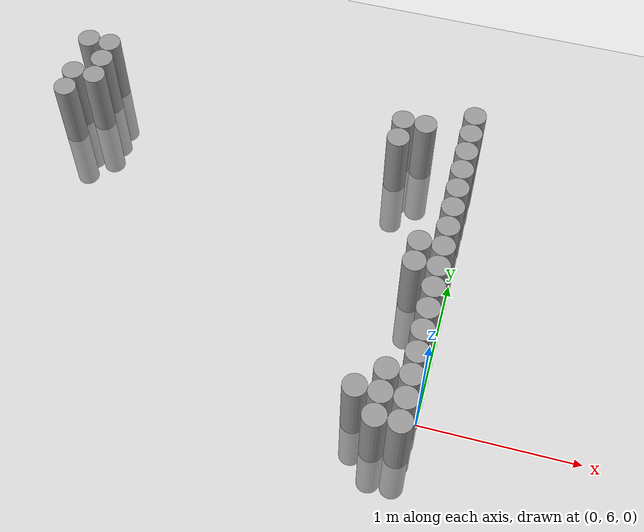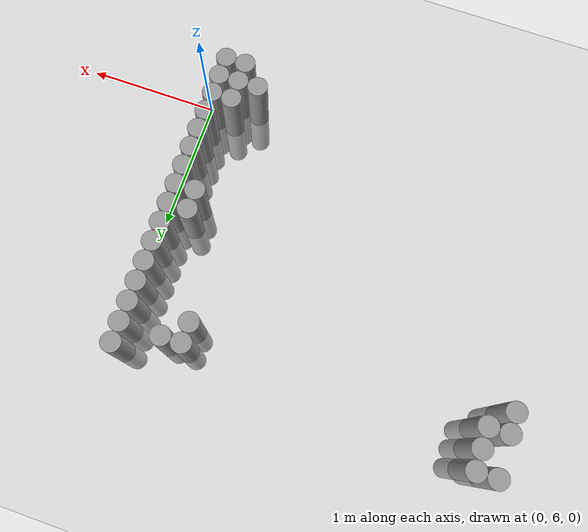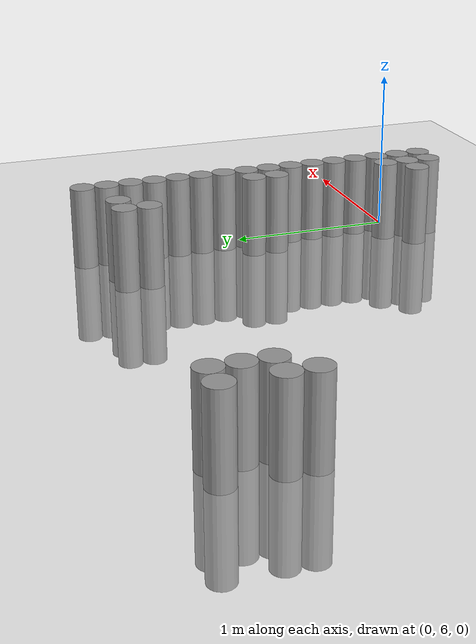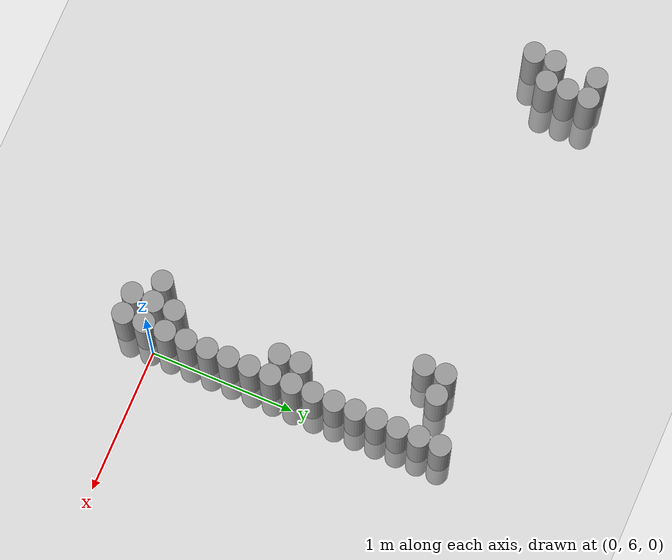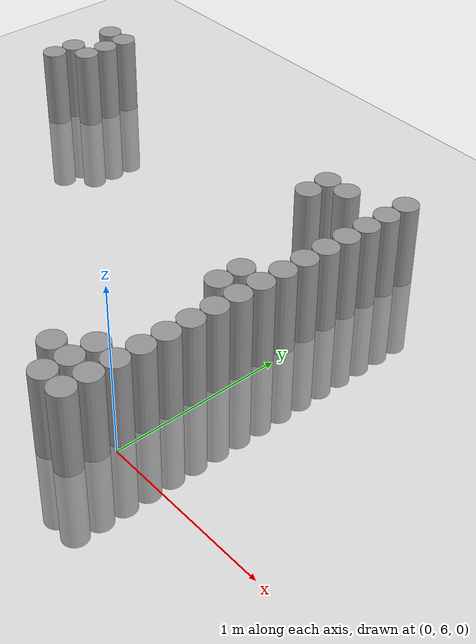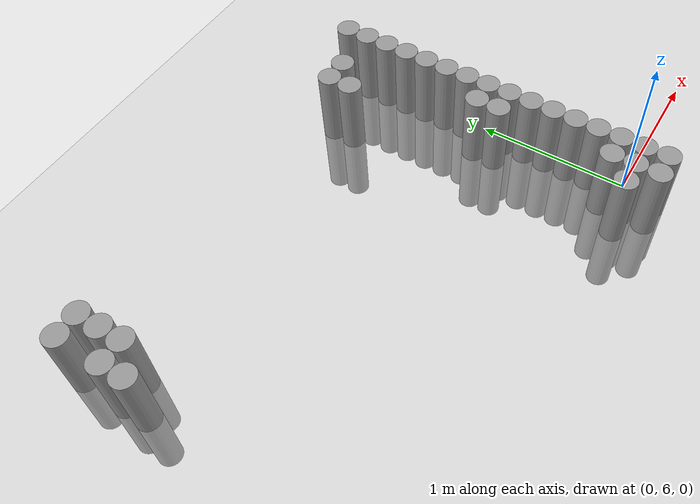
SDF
<sdf version="1.6">
 <world name="default">
  <model name="ground_plane">
   <static>1</static>
   <static>1</static>
   <link name="link">
    <collision name="collision">
     <geometry><plane><normal>0 0 1</normal><size>100 100</size></plane></geometry>
     <surface><friction><ode><mu>100</mu><mu2>50</mu2></ode></friction></surface>
    </collision>
    <visual name="visual">
     <cast_shadows>0</cast_shadows>
     <geometry><plane><normal>0 0 1</normal><size>100 100</size></plane></geometry>
     <material>
      <script><uri>file://media/materials/scripts/gazebo.material</uri><name>Gazebo/Grey</name></script>
     </material>
    </visual>
   </link>
  </model>
  <model name="unit_cylinder_181">
   <static>1</static>
   <pose>-2.775000 7.575000 0.000000 0.000000 0.000000 0.000000</pose>
   <link name="link">
    <inertial>
     <mass>1</mass>
     <inertia><ixx>0.145833</ixx><ixy>0</ixy><ixz>0</ixz><iyy>0.145833</iyy><iyz>0</iyz><izz>0.125</izz></inertia>
    </inertial>
    <collision name="collision">
     <geometry><cylinder><radius>0.075000</radius><length>1</length></cylinder></geometry>
    </collision>
    <visual name="visual">
     <geometry><cylinder><radius>0.075000</radius><length>1</length></cylinder></geometry>
     <material>
      <script><name>Gazebo/Grey</name><uri>file://media/materials/scripts/gazebo.material</uri></script>
     </material>
    </visual>
   </link>
  </model>
  <model name="unit_cylinder_182">
   <static>1</static>
   <pose>-2.775000 7.725000 0.000000 0.000000 0.000000 0.000000</pose>
   <link name="link">
    <inertial>
     <mass>1</mass>
     <inertia><ixx>0.145833</ixx><ixy>0</ixy><ixz>0</ixz><iyy>0.145833</iyy><iyz>0</iyz><izz>0.125</izz></inertia>
    </inertial>
    <collision name="collision">
     <geometry><cylinder><radius>0.075000</radius><length>1</length></cylinder></geometry>
    </collision>
    <visual name="visual">
     <geometry><cylinder><radius>0.075000</radius><length>1</length></cylinder></geometry>
     <material>
      <script><name>Gazebo/Grey</name><uri>file://media/materials/scripts/gazebo.material</uri></script>
     </material>
    </visual>
   </link>
  </model>
  <model name="unit_cylinder_183">
   <static>1</static>
   <pose>-2.775000 8.025000 0.000000 0.000000 0.000000 0.000000</pose>
   <link name="link">
    <inertial>
     <mass>1</mass>
     <inertia><ixx>0.145833</ixx><ixy>0</ixy><ixz>0</ixz><iyy>0.145833</iyy><iyz>0</iyz><izz>0.125</izz></inertia>
    </inertial>
    <collision name="collision">
     <geometry><cylinder><radius>0.075000</radius><length>1</length></cylinder></geometry>
    </collision>
    <visual name="visual">
     <geometry><cylinder><radius>0.075000</radius><length>1</length></cylinder></geometry>
     <material>
      <script><name>Gazebo/Grey</name><uri>file://media/materials/scripts/gazebo.material</uri></script>
     </material>
    </visual>
   </link>
  </model>
  <model name="unit_cylinder_185">
   <static>1</static>
   <pose>-2.625000 7.725000 0.000000 0.000000 0.000000 0.000000</pose>
   <link name="link">
    <inertial>
     <mass>1</mass>
     <inertia><ixx>0.145833</ixx><ixy>0</ixy><ixz>0</ixz><iyy>0.145833</iyy><iyz>0</iyz><izz>0.125</izz></inertia>
    </inertial>
    <collision name="collision">
     <geometry><cylinder><radius>0.075000</radius><length>1</length></cylinder></geometry>
    </collision>
    <visual name="visual">
     <geometry><cylinder><radius>0.075000</radius><length>1</length></cylinder></geometry>
     <material>
      <script><name>Gazebo/Grey</name><uri>file://media/materials/scripts/gazebo.material</uri></script>
     </material>
    </visual>
   </link>
  </model>
  <model name="unit_cylinder_186">
   <static>1</static>
   <pose>-2.625000 7.875000 0.000000 0.000000 0.000000 0.000000</pose>
   <link name="link">
    <inertial>
     <mass>1</mass>
     <inertia><ixx>0.145833</ixx><ixy>0</ixy><ixz>0</ixz><iyy>0.145833</iyy><iyz>0</iyz><izz>0.125</izz></inertia>
    </inertial>
    <collision name="collision">
     <geometry><cylinder><radius>0.075000</radius><length>1</length></cylinder></geometry>
    </collision>
    <visual name="visual">
     <geometry><cylinder><radius>0.075000</radius><length>1</length></cylinder></geometry>
     <material>
      <script><name>Gazebo/Grey</name><uri>file://media/materials/scripts/gazebo.material</uri></script>
     </material>
    </visual>
   </link>
  </model>
  <model name="unit_cylinder_187">
   <static>1</static>
   <pose>-2.625000 8.025000 0.000000 0.000000 0.000000 0.000000</pose>
   <link name="link">
    <inertial>
     <mass>1</mass>
     <inertia><ixx>0.145833</ixx><ixy>0</ixy><ixz>0</ixz><iyy>0.145833</iyy><iyz>0</iyz><izz>0.125</izz></inertia>
    </inertial>
    <collision name="collision">
     <geometry><cylinder><radius>0.075000</radius><length>1</length></cylinder></geometry>
    </collision>
    <visual name="visual">
     <geometry><cylinder><radius>0.075000</radius><length>1</length></cylinder></geometry>
     <material>
      <script><name>Gazebo/Grey</name><uri>file://media/materials/scripts/gazebo.material</uri></script>
     </material>
    </visual>
   </link>
  </model>
  <model name="unit_cylinder_197">
   <static>1</static>
   <pose>-0.525000 7.725000 0.000000 0.000000 0.000000 0.000000</pose>
   <link name="link">
    <inertial>
     <mass>1</mass>
     <inertia><ixx>0.145833</ixx><ixy>0</ixy><ixz>0</ixz><iyy>0.145833</iyy><iyz>0</iyz><izz>0.125</izz></inertia>
    </inertial>
    <collision name="collision">
     <geometry><cylinder><radius>0.075000</radius><length>1</length></cylinder></geometry>
    </collision>
    <visual name="visual">
     <geometry><cylinder><radius>0.075000</radius><length>1</length></cylinder></geometry>
     <material>
      <script><name>Gazebo/Grey</name><uri>file://media/materials/scripts/gazebo.material</uri></script>
     </material>
    </visual>
   </link>
  </model>
  <model name="unit_cylinder_198">
   <static>1</static>
   <pose>-0.525000 7.875000 0.000000 0.000000 0.000000 0.000000</pose>
   <link name="link">
    <inertial>
     <mass>1</mass>
     <inertia><ixx>0.145833</ixx><ixy>0</ixy><ixz>0</ixz><iyy>0.145833</iyy><iyz>0</iyz><izz>0.125</izz></inertia>
    </inertial>
    <collision name="collision">
     <geometry><cylinder><radius>0.075000</radius><length>1</length></cylinder></geometry>
    </collision>
    <visual name="visual">
     <geometry><cylinder><radius>0.075000</radius><length>1</length></cylinder></geometry>
     <material>
      <script><name>Gazebo/Grey</name><uri>file://media/materials/scripts/gazebo.material</uri></script>
     </material>
    </visual>
   </link>
  </model>
  <model name="unit_cylinder_201">
   <static>1</static>
   <pose>-0.375000 5.925000 0.000000 0.000000 0.000000 0.000000</pose>
   <link name="link">
    <inertial>
     <mass>1</mass>
     <inertia><ixx>0.145833</ixx><ixy>0</ixy><ixz>0</ixz><iyy>0.145833</iyy><iyz>0</iyz><izz>0.125</izz></inertia>
    </inertial>
    <collision name="collision">
     <geometry><cylinder><radius>0.075000</radius><length>1</length></cylinder></geometry>
    </collision>
    <visual name="visual">
     <geometry><cylinder><radius>0.075000</radius><length>1</length></cylinder></geometry>
     <material>
      <script><name>Gazebo/Grey</name><uri>file://media/materials/scripts/gazebo.material</uri></script>
     </material>
    </visual>
   </link>
  </model>
  <model name="unit_cylinder_202">
   <static>1</static>
   <pose>-0.375000 7.875000 0.000000 0.000000 0.000000 0.000000</pose>
   <link name="link">
    <inertial>
     <mass>1</mass>
     <inertia><ixx>0.145833</ixx><ixy>0</ixy><ixz>0</ixz><iyy>0.145833</iyy><iyz>0</iyz><izz>0.125</izz></inertia>
    </inertial>
    <collision name="collision">
     <geometry><cylinder><radius>0.075000</radius><length>1</length></cylinder></geometry>
    </collision>
    <visual name="visual">
     <geometry><cylinder><radius>0.075000</radius><length>1</length></cylinder></geometry>
     <material>
      <script><name>Gazebo/Grey</name><uri>file://media/materials/scripts/gazebo.material</uri></script>
     </material>
    </visual>
   </link>
  </model>
  <model name="unit_cylinder_207">
   <static>1</static>
   <pose>-0.225000 5.775000 0.000000 0.000000 0.000000 0.000000</pose>
   <link name="link">
    <inertial>
     <mass>1</mass>
     <inertia><ixx>0.145833</ixx><ixy>0</ixy><ixz>0</ixz><iyy>0.145833</iyy><iyz>0</iyz><izz>0.125</izz></inertia>
    </inertial>
    <collision name="collision">
     <geometry><cylinder><radius>0.075000</radius><length>1</length></cylinder></geometry>
    </collision>
    <visual name="visual">
     <geometry><cylinder><radius>0.075000</radius><length>1</length></cylinder></geometry>
     <material>
      <script><name>Gazebo/Grey</name><uri>file://media/materials/scripts/gazebo.material</uri></script>
     </material>
    </visual>
   </link>
  </model>
  <model name="unit_cylinder_208">
   <static>1</static>
   <pose>-0.225000 5.925000 0.000000 0.000000 0.000000 0.000000</pose>
   <link name="link">
    <inertial>
     <mass>1</mass>
     <inertia><ixx>0.145833</ixx><ixy>0</ixy><ixz>0</ixz><iyy>0.145833</iyy><iyz>0</iyz><izz>0.125</izz></inertia>
    </inertial>
    <collision name="collision">
     <geometry><cylinder><radius>0.075000</radius><length>1</length></cylinder></geometry>
    </collision>
    <visual name="visual">
     <geometry><cylinder><radius>0.075000</radius><length>1</length></cylinder></geometry>
     <material>
      <script><name>Gazebo/Grey</name><uri>file://media/materials/scripts/gazebo.material</uri></script>
     </material>
    </visual>
   </link>
  </model>
  <model name="unit_cylinder_209">
   <static>1</static>
   <pose>-0.225000 6.075000 0.000000 0.000000 0.000000 0.000000</pose>
   <link name="link">
    <inertial>
     <mass>1</mass>
     <inertia><ixx>0.145833</ixx><ixy>0</ixy><ixz>0</ixz><iyy>0.145833</iyy><iyz>0</iyz><izz>0.125</izz></inertia>
    </inertial>
    <collision name="collision">
     <geometry><cylinder><radius>0.075000</radius><length>1</length></cylinder></geometry>
    </collision>
    <visual name="visual">
     <geometry><cylinder><radius>0.075000</radius><length>1</length></cylinder></geometry>
     <material>
      <script><name>Gazebo/Grey</name><uri>file://media/materials/scripts/gazebo.material</uri></script>
     </material>
    </visual>
   </link>
  </model>
  <model name="unit_cylinder_210">
   <static>1</static>
   <pose>-0.225000 6.825000 0.000000 0.000000 0.000000 0.000000</pose>
   <link name="link">
    <inertial>
     <mass>1</mass>
     <inertia><ixx>0.145833</ixx><ixy>0</ixy><ixz>0</ixz><iyy>0.145833</iyy><iyz>0</iyz><izz>0.125</izz></inertia>
    </inertial>
    <collision name="collision">
     <geometry><cylinder><radius>0.075000</radius><length>1</length></cylinder></geometry>
    </collision>
    <visual name="visual">
     <geometry><cylinder><radius>0.075000</radius><length>1</length></cylinder></geometry>
     <material>
      <script><name>Gazebo/Grey</name><uri>file://media/materials/scripts/gazebo.material</uri></script>
     </material>
    </visual>
   </link>
  </model>
  <model name="unit_cylinder_211">
   <static>1</static>
   <pose>-0.225000 6.975000 0.000000 0.000000 0.000000 0.000000</pose>
   <link name="link">
    <inertial>
     <mass>1</mass>
     <inertia><ixx>0.145833</ixx><ixy>0</ixy><ixz>0</ixz><iyy>0.145833</iyy><iyz>0</iyz><izz>0.125</izz></inertia>
    </inertial>
    <collision name="collision">
     <geometry><cylinder><radius>0.075000</radius><length>1</length></cylinder></geometry>
    </collision>
    <visual name="visual">
     <geometry><cylinder><radius>0.075000</radius><length>1</length></cylinder></geometry>
     <material>
      <script><name>Gazebo/Grey</name><uri>file://media/materials/scripts/gazebo.material</uri></script>
     </material>
    </visual>
   </link>
  </model>
  <model name="unit_cylinder_220">
   <static>1</static>
   <pose>-0.075000 5.775000 0.000000 0.000000 0.000000 0.000000</pose>
   <link name="link">
    <inertial>
     <mass>1</mass>
     <inertia><ixx>0.145833</ixx><ixy>0</ixy><ixz>0</ixz><iyy>0.145833</iyy><iyz>0</iyz><izz>0.125</izz></inertia>
    </inertial>
    <collision name="collision">
     <geometry><cylinder><radius>0.075000</radius><length>1</length></cylinder></geometry>
    </collision>
    <visual name="visual">
     <geometry><cylinder><radius>0.075000</radius><length>1</length></cylinder></geometry>
     <material>
      <script><name>Gazebo/Grey</name><uri>file://media/materials/scripts/gazebo.material</uri></script>
     </material>
    </visual>
   </link>
  </model>
  <model name="unit_cylinder_221">
   <static>1</static>
   <pose>-0.075000 5.925000 0.000000 0.000000 0.000000 0.000000</pose>
   <link name="link">
    <inertial>
     <mass>1</mass>
     <inertia><ixx>0.145833</ixx><ixy>0</ixy><ixz>0</ixz><iyy>0.145833</iyy><iyz>0</iyz><izz>0.125</izz></inertia>
    </inertial>
    <collision name="collision">
     <geometry><cylinder><radius>0.075000</radius><length>1</length></cylinder></geometry>
    </collision>
    <visual name="visual">
     <geometry><cylinder><radius>0.075000</radius><length>1</length></cylinder></geometry>
     <material>
      <script><name>Gazebo/Grey</name><uri>file://media/materials/scripts/gazebo.material</uri></script>
     </material>
    </visual>
   </link>
  </model>
  <model name="unit_cylinder_222">
   <static>1</static>
   <pose>-0.075000 6.075000 0.000000 0.000000 0.000000 0.000000</pose>
   <link name="link">
    <inertial>
     <mass>1</mass>
     <inertia><ixx>0.145833</ixx><ixy>0</ixy><ixz>0</ixz><iyy>0.145833</iyy><iyz>0</iyz><izz>0.125</izz></inertia>
    </inertial>
    <collision name="collision">
     <geometry><cylinder><radius>0.075000</radius><length>1</length></cylinder></geometry>
    </collision>
    <visual name="visual">
     <geometry><cylinder><radius>0.075000</radius><length>1</length></cylinder></geometry>
     <material>
      <script><name>Gazebo/Grey</name><uri>file://media/materials/scripts/gazebo.material</uri></script>
     </material>
    </visual>
   </link>
  </model>
  <model name="unit_cylinder_223">
   <static>1</static>
   <pose>-0.075000 6.225000 0.000000 0.000000 0.000000 0.000000</pose>
   <link name="link">
    <inertial>
     <mass>1</mass>
     <inertia><ixx>0.145833</ixx><ixy>0</ixy><ixz>0</ixz><iyy>0.145833</iyy><iyz>0</iyz><izz>0.125</izz></inertia>
    </inertial>
    <collision name="collision">
     <geometry><cylinder><radius>0.075000</radius><length>1</length></cylinder></geometry>
    </collision>
    <visual name="visual">
     <geometry><cylinder><radius>0.075000</radius><length>1</length></cylinder></geometry>
     <material>
      <script><name>Gazebo/Grey</name><uri>file://media/materials/scripts/gazebo.material</uri></script>
     </material>
    </visual>
   </link>
  </model>
  <model name="unit_cylinder_224">
   <static>1</static>
   <pose>-0.075000 6.375000 0.000000 0.000000 0.000000 0.000000</pose>
   <link name="link">
    <inertial>
     <mass>1</mass>
     <inertia><ixx>0.145833</ixx><ixy>0</ixy><ixz>0</ixz><iyy>0.145833</iyy><iyz>0</iyz><izz>0.125</izz></inertia>
    </inertial>
    <collision name="collision">
     <geometry><cylinder><radius>0.075000</radius><length>1</length></cylinder></geometry>
    </collision>
    <visual name="visual">
     <geometry><cylinder><radius>0.075000</radius><length>1</length></cylinder></geometry>
     <material>
      <script><name>Gazebo/Grey</name><uri>file://media/materials/scripts/gazebo.material</uri></script>
     </material>
    </visual>
   </link>
  </model>
  <model name="unit_cylinder_225">
   <static>1</static>
   <pose>-0.075000 6.525000 0.000000 0.000000 0.000000 0.000000</pose>
   <link name="link">
    <inertial>
     <mass>1</mass>
     <inertia><ixx>0.145833</ixx><ixy>0</ixy><ixz>0</ixz><iyy>0.145833</iyy><iyz>0</iyz><izz>0.125</izz></inertia>
    </inertial>
    <collision name="collision">
     <geometry><cylinder><radius>0.075000</radius><length>1</length></cylinder></geometry>
    </collision>
    <visual name="visual">
     <geometry><cylinder><radius>0.075000</radius><length>1</length></cylinder></geometry>
     <material>
      <script><name>Gazebo/Grey</name><uri>file://media/materials/scripts/gazebo.material</uri></script>
     </material>
    </visual>
   </link>
  </model>
  <model name="unit_cylinder_226">
   <static>1</static>
   <pose>-0.075000 6.675000 0.000000 0.000000 0.000000 0.000000</pose>
   <link name="link">
    <inertial>
     <mass>1</mass>
     <inertia><ixx>0.145833</ixx><ixy>0</ixy><ixz>0</ixz><iyy>0.145833</iyy><iyz>0</iyz><izz>0.125</izz></inertia>
    </inertial>
    <collision name="collision">
     <geometry><cylinder><radius>0.075000</radius><length>1</length></cylinder></geometry>
    </collision>
    <visual name="visual">
     <geometry><cylinder><radius>0.075000</radius><length>1</length></cylinder></geometry>
     <material>
      <script><name>Gazebo/Grey</name><uri>file://media/materials/scripts/gazebo.material</uri></script>
     </material>
    </visual>
   </link>
  </model>
  <model name="unit_cylinder_227">
   <static>1</static>
   <pose>-0.075000 6.825000 0.000000 0.000000 0.000000 0.000000</pose>
   <link name="link">
    <inertial>
     <mass>1</mass>
     <inertia><ixx>0.145833</ixx><ixy>0</ixy><ixz>0</ixz><iyy>0.145833</iyy><iyz>0</iyz><izz>0.125</izz></inertia>
    </inertial>
    <collision name="collision">
     <geometry><cylinder><radius>0.075000</radius><length>1</length></cylinder></geometry>
    </collision>
    <visual name="visual">
     <geometry><cylinder><radius>0.075000</radius><length>1</length></cylinder></geometry>
     <material>
      <script><name>Gazebo/Grey</name><uri>file://media/materials/scripts/gazebo.material</uri></script>
     </material>
    </visual>
   </link>
  </model>
  <model name="unit_cylinder_228">
   <static>1</static>
   <pose>-0.075000 6.975000 0.000000 0.000000 0.000000 0.000000</pose>
   <link name="link">
    <inertial>
     <mass>1</mass>
     <inertia><ixx>0.145833</ixx><ixy>0</ixy><ixz>0</ixz><iyy>0.145833</iyy><iyz>0</iyz><izz>0.125</izz></inertia>
    </inertial>
    <collision name="collision">
     <geometry><cylinder><radius>0.075000</radius><length>1</length></cylinder></geometry>
    </collision>
    <visual name="visual">
     <geometry><cylinder><radius>0.075000</radius><length>1</length></cylinder></geometry>
     <material>
      <script><name>Gazebo/Grey</name><uri>file://media/materials/scripts/gazebo.material</uri></script>
     </material>
    </visual>
   </link>
  </model>
  <model name="unit_cylinder_229">
   <static>1</static>
   <pose>-0.075000 7.125000 0.000000 0.000000 0.000000 0.000000</pose>
   <link name="link">
    <inertial>
     <mass>1</mass>
     <inertia><ixx>0.145833</ixx><ixy>0</ixy><ixz>0</ixz><iyy>0.145833</iyy><iyz>0</iyz><izz>0.125</izz></inertia>
    </inertial>
    <collision name="collision">
     <geometry><cylinder><radius>0.075000</radius><length>1</length></cylinder></geometry>
    </collision>
    <visual name="visual">
     <geometry><cylinder><radius>0.075000</radius><length>1</length></cylinder></geometry>
     <material>
      <script><name>Gazebo/Grey</name><uri>file://media/materials/scripts/gazebo.material</uri></script>
     </material>
    </visual>
   </link>
  </model>
  <model name="unit_cylinder_230">
   <static>1</static>
   <pose>-0.075000 7.275000 0.000000 0.000000 0.000000 0.000000</pose>
   <link name="link">
    <inertial>
     <mass>1</mass>
     <inertia><ixx>0.145833</ixx><ixy>0</ixy><ixz>0</ixz><iyy>0.145833</iyy><iyz>0</iyz><izz>0.125</izz></inertia>
    </inertial>
    <collision name="collision">
     <geometry><cylinder><radius>0.075000</radius><length>1</length></cylinder></geometry>
    </collision>
    <visual name="visual">
     <geometry><cylinder><radius>0.075000</radius><length>1</length></cylinder></geometry>
     <material>
      <script><name>Gazebo/Grey</name><uri>file://media/materials/scripts/gazebo.material</uri></script>
     </material>
    </visual>
   </link>
  </model>
  <model name="unit_cylinder_231">
   <static>1</static>
   <pose>-0.075000 7.425000 0.000000 0.000000 0.000000 0.000000</pose>
   <link name="link">
    <inertial>
     <mass>1</mass>
     <inertia><ixx>0.145833</ixx><ixy>0</ixy><ixz>0</ixz><iyy>0.145833</iyy><iyz>0</iyz><izz>0.125</izz></inertia>
    </inertial>
    <collision name="collision">
     <geometry><cylinder><radius>0.075000</radius><length>1</length></cylinder></geometry>
    </collision>
    <visual name="visual">
     <geometry><cylinder><radius>0.075000</radius><length>1</length></cylinder></geometry>
     <material>
      <script><name>Gazebo/Grey</name><uri>file://media/materials/scripts/gazebo.material</uri></script>
     </material>
    </visual>
   </link>
  </model>
  <model name="unit_cylinder_232">
   <static>1</static>
   <pose>-0.075000 7.575000 0.000000 0.000000 0.000000 0.000000</pose>
   <link name="link">
    <inertial>
     <mass>1</mass>
     <inertia><ixx>0.145833</ixx><ixy>0</ixy><ixz>0</ixz><iyy>0.145833</iyy><iyz>0</iyz><izz>0.125</izz></inertia>
    </inertial>
    <collision name="collision">
     <geometry><cylinder><radius>0.075000</radius><length>1</length></cylinder></geometry>
    </collision>
    <visual name="visual">
     <geometry><cylinder><radius>0.075000</radius><length>1</length></cylinder></geometry>
     <material>
      <script><name>Gazebo/Grey</name><uri>file://media/materials/scripts/gazebo.material</uri></script>
     </material>
    </visual>
   </link>
  </model>
  <model name="unit_cylinder_233">
   <static>1</static>
   <pose>-0.075000 7.725000 0.000000 0.000000 0.000000 0.000000</pose>
   <link name="link">
    <inertial>
     <mass>1</mass>
     <inertia><ixx>0.145833</ixx><ixy>0</ixy><ixz>0</ixz><iyy>0.145833</iyy><iyz>0</iyz><izz>0.125</izz></inertia>
    </inertial>
    <collision name="collision">
     <geometry><cylinder><radius>0.075000</radius><length>1</length></cylinder></geometry>
    </collision>
    <visual name="visual">
     <geometry><cylinder><radius>0.075000</radius><length>1</length></cylinder></geometry>
     <material>
      <script><name>Gazebo/Grey</name><uri>file://media/materials/scripts/gazebo.material</uri></script>
     </material>
    </visual>
   </link>
  </model>
  <model name="unit_cylinder_234">
   <static>1</static>
   <pose>-0.075000 7.875000 0.000000 0.000000 0.000000 0.000000</pose>
   <link name="link">
    <inertial>
     <mass>1</mass>
     <inertia><ixx>0.145833</ixx><ixy>0</ixy><ixz>0</ixz><iyy>0.145833</iyy><iyz>0</iyz><izz>0.125</izz></inertia>
    </inertial>
    <collision name="collision">
     <geometry><cylinder><radius>0.075000</radius><length>1</length></cylinder></geometry>
    </collision>
    <visual name="visual">
     <geometry><cylinder><radius>0.075000</radius><length>1</length></cylinder></geometry>
     <material>
      <script><name>Gazebo/Grey</name><uri>file://media/materials/scripts/gazebo.material</uri></script>
     </material>
    </visual>
   </link>
  </model>
  <model name="unit_cylinder_235">
   <static>1</static>
   <pose>-0.075000 8.025000 0.000000 0.000000 0.000000 0.000000</pose>
   <link name="link">
    <inertial>
     <mass>1</mass>
     <inertia><ixx>0.145833</ixx><ixy>0</ixy><ixz>0</ixz><iyy>0.145833</iyy><iyz>0</iyz><izz>0.125</izz></inertia>
    </inertial>
    <collision name="collision">
     <geometry><cylinder><radius>0.075000</radius><length>1</length></cylinder></geometry>
    </collision>
    <visual name="visual">
     <geometry><cylinder><radius>0.075000</radius><length>1</length></cylinder></geometry>
     <material>
      <script><name>Gazebo/Grey</name><uri>file://media/materials/scripts/gazebo.material</uri></script>
     </material>
    </visual>
   </link>
  </model>
 </world>
</sdf>
